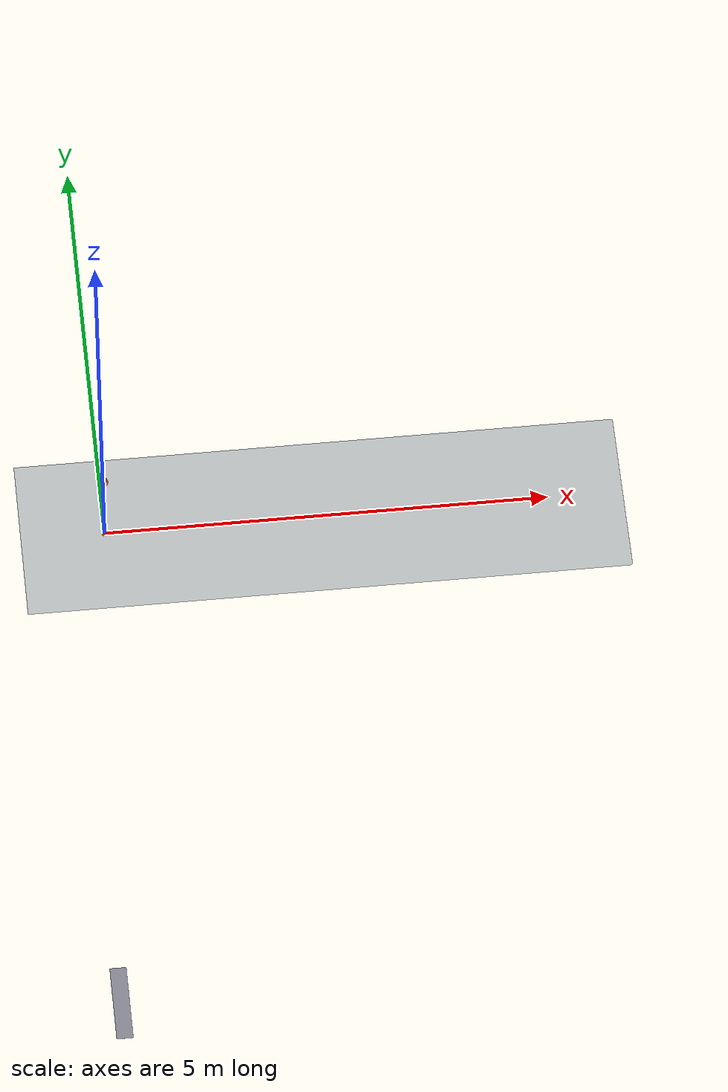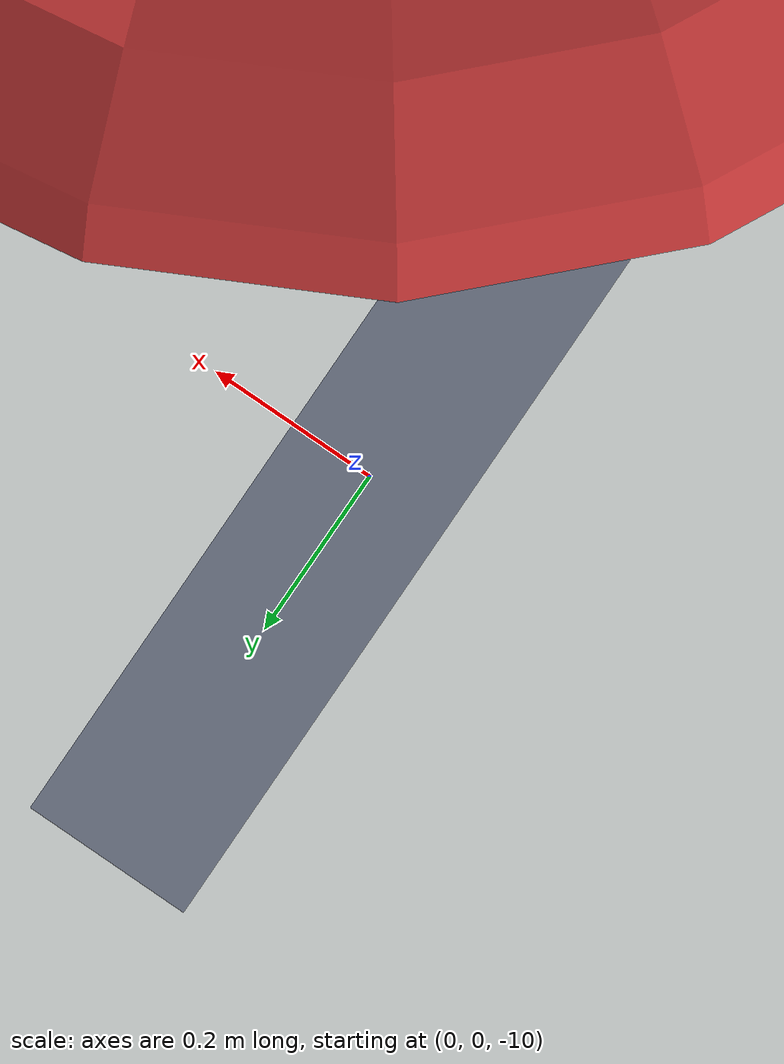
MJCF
<mujoco model="slip_2d">
  <option gravity="0 0 -9.81" timestep="0.001"/>

  <visual>
    <headlight diffuse="0.6 0.6 0.6" ambient="0.4 0.4 0.4" specular="0.2 0.2 0.2"/>
    <rgba haze="0.15 0.25 0.35 1"/>
  </visual>

  <asset>
    <texture type="skybox" builtin="gradient" rgb1="0.3 0.5 0.7" rgb2="0 0 0"
             width="512" height="512"/>
    <texture name="grid" type="2d" builtin="checker" rgb1="0.1 0.2 0.3"
             rgb2="0.2 0.3 0.4" width="300" height="300" mark="edge" markrgb=".2 .3 .4"/>
    <material name="grid" texture="grid" texrepeat="4 4" texuniform="true"
              reflectance="0.2"/>
  </asset>

  <worldbody>
    <geom name="floor" type="plane" pos="0 0 0" size="6 1 0.05" material="grid"/>

    <!-- 质心球 -->
    <body name="hopper" pos="0 0 1">
      <joint name="bx" type="slide" axis="1 0 0" damping="0"/>
      <joint name="bz" type="slide" axis="0 0 1" damping="0"/>
      <geom name="ball" type="sphere" size="0.06" mass="1.0"
            rgba="1.0 0.3 0.3 1"/>
      <site name="top" pos="0 0 -0.06" size="0.02" rgba="0.9 0.7 0.1 1"/>
    </body>

    <!-- 足端 -->
    <body name="foot_body" pos="0 0 0">
      <joint name="fx" type="slide" axis="1 0 0" damping="0" limited="false"/>
      <joint name="fz" type="slide" axis="0 0 1" damping="0" limited="false"/>
      <geom name="foot_geom" type="sphere" size="0.03" mass="0.001"
            rgba="0.9 0.7 0.1 1"/>
      <site name="foot" pos="0 0 0" size="0.025" rgba="0.9 0.7 0.1 1"/>
    </body>

    <!-- 地形 box tile：上限 64，运行时通过 m->geom_pos / geom_size 改写
         切换地形类型时全部 reset 到 z=0（即"藏起来"）后再贴上 polyline 段。 -->
    <body name="terrain_tiles" pos="0 0 0">
      <geom name="t00" type="box" size="0.1 0.5 0.001" pos="0 0 -10" rgba="0.55 0.55 0.60 1" contype="0" conaffinity="0"/>
      <geom name="t01" type="box" size="0.1 0.5 0.001" pos="0 0 -10" rgba="0.55 0.55 0.60 1" contype="0" conaffinity="0"/>
      <geom name="t02" type="box" size="0.1 0.5 0.001" pos="0 0 -10" rgba="0.55 0.55 0.60 1" contype="0" conaffinity="0"/>
      <geom name="t03" type="box" size="0.1 0.5 0.001" pos="0 0 -10" rgba="0.55 0.55 0.60 1" contype="0" conaffinity="0"/>
      <geom name="t04" type="box" size="0.1 0.5 0.001" pos="0 0 -10" rgba="0.55 0.55 0.60 1" contype="0" conaffinity="0"/>
      <geom name="t05" type="box" size="0.1 0.5 0.001" pos="0 0 -10" rgba="0.55 0.55 0.60 1" contype="0" conaffinity="0"/>
      <geom name="t06" type="box" size="0.1 0.5 0.001" pos="0 0 -10" rgba="0.55 0.55 0.60 1" contype="0" conaffinity="0"/>
      <geom name="t07" type="box" size="0.1 0.5 0.001" pos="0 0 -10" rgba="0.55 0.55 0.60 1" contype="0" conaffinity="0"/>
      <geom name="t08" type="box" size="0.1 0.5 0.001" pos="0 0 -10" rgba="0.55 0.55 0.60 1" contype="0" conaffinity="0"/>
      <geom name="t09" type="box" size="0.1 0.5 0.001" pos="0 0 -10" rgba="0.55 0.55 0.60 1" contype="0" conaffinity="0"/>
      <geom name="t10" type="box" size="0.1 0.5 0.001" pos="0 0 -10" rgba="0.55 0.55 0.60 1" contype="0" conaffinity="0"/>
      <geom name="t11" type="box" size="0.1 0.5 0.001" pos="0 0 -10" rgba="0.55 0.55 0.60 1" contype="0" conaffinity="0"/>
      <geom name="t12" type="box" size="0.1 0.5 0.001" pos="0 0 -10" rgba="0.55 0.55 0.60 1" contype="0" conaffinity="0"/>
      <geom name="t13" type="box" size="0.1 0.5 0.001" pos="0 0 -10" rgba="0.55 0.55 0.60 1" contype="0" conaffinity="0"/>
      <geom name="t14" type="box" size="0.1 0.5 0.001" pos="0 0 -10" rgba="0.55 0.55 0.60 1" contype="0" conaffinity="0"/>
      <geom name="t15" type="box" size="0.1 0.5 0.001" pos="0 0 -10" rgba="0.55 0.55 0.60 1" contype="0" conaffinity="0"/>
      <geom name="t16" type="box" size="0.1 0.5 0.001" pos="0 0 -10" rgba="0.55 0.55 0.60 1" contype="0" conaffinity="0"/>
      <geom name="t17" type="box" size="0.1 0.5 0.001" pos="0 0 -10" rgba="0.55 0.55 0.60 1" contype="0" conaffinity="0"/>
      <geom name="t18" type="box" size="0.1 0.5 0.001" pos="0 0 -10" rgba="0.55 0.55 0.60 1" contype="0" conaffinity="0"/>
      <geom name="t19" type="box" size="0.1 0.5 0.001" pos="0 0 -10" rgba="0.55 0.55 0.60 1" contype="0" conaffinity="0"/>
      <geom name="t20" type="box" size="0.1 0.5 0.001" pos="0 0 -10" rgba="0.55 0.55 0.60 1" contype="0" conaffinity="0"/>
      <geom name="t21" type="box" size="0.1 0.5 0.001" pos="0 0 -10" rgba="0.55 0.55 0.60 1" contype="0" conaffinity="0"/>
      <geom name="t22" type="box" size="0.1 0.5 0.001" pos="0 0 -10" rgba="0.55 0.55 0.60 1" contype="0" conaffinity="0"/>
      <geom name="t23" type="box" size="0.1 0.5 0.001" pos="0 0 -10" rgba="0.55 0.55 0.60 1" contype="0" conaffinity="0"/>
      <geom name="t24" type="box" size="0.1 0.5 0.001" pos="0 0 -10" rgba="0.55 0.55 0.60 1" contype="0" conaffinity="0"/>
      <geom name="t25" type="box" size="0.1 0.5 0.001" pos="0 0 -10" rgba="0.55 0.55 0.60 1" contype="0" conaffinity="0"/>
      <geom name="t26" type="box" size="0.1 0.5 0.001" pos="0 0 -10" rgba="0.55 0.55 0.60 1" contype="0" conaffinity="0"/>
      <geom name="t27" type="box" size="0.1 0.5 0.001" pos="0 0 -10" rgba="0.55 0.55 0.60 1" contype="0" conaffinity="0"/>
      <geom name="t28" type="box" size="0.1 0.5 0.001" pos="0 0 -10" rgba="0.55 0.55 0.60 1" contype="0" conaffinity="0"/>
      <geom name="t29" type="box" size="0.1 0.5 0.001" pos="0 0 -10" rgba="0.55 0.55 0.60 1" contype="0" conaffinity="0"/>
      <geom name="t30" type="box" size="0.1 0.5 0.001" pos="0 0 -10" rgba="0.55 0.55 0.60 1" contype="0" conaffinity="0"/>
      <geom name="t31" type="box" size="0.1 0.5 0.001" pos="0 0 -10" rgba="0.55 0.55 0.60 1" contype="0" conaffinity="0"/>
      <geom name="t32" type="box" size="0.1 0.5 0.001" pos="0 0 -10" rgba="0.55 0.55 0.60 1" contype="0" conaffinity="0"/>
      <geom name="t33" type="box" size="0.1 0.5 0.001" pos="0 0 -10" rgba="0.55 0.55 0.60 1" contype="0" conaffinity="0"/>
      <geom name="t34" type="box" size="0.1 0.5 0.001" pos="0 0 -10" rgba="0.55 0.55 0.60 1" contype="0" conaffinity="0"/>
      <geom name="t35" type="box" size="0.1 0.5 0.001" pos="0 0 -10" rgba="0.55 0.55 0.60 1" contype="0" conaffinity="0"/>
      <geom name="t36" type="box" size="0.1 0.5 0.001" pos="0 0 -10" rgba="0.55 0.55 0.60 1" contype="0" conaffinity="0"/>
      <geom name="t37" type="box" size="0.1 0.5 0.001" pos="0 0 -10" rgba="0.55 0.55 0.60 1" contype="0" conaffinity="0"/>
      <geom name="t38" type="box" size="0.1 0.5 0.001" pos="0 0 -10" rgba="0.55 0.55 0.60 1" contype="0" conaffinity="0"/>
      <geom name="t39" type="box" size="0.1 0.5 0.001" pos="0 0 -10" rgba="0.55 0.55 0.60 1" contype="0" conaffinity="0"/>
      <geom name="t40" type="box" size="0.1 0.5 0.001" pos="0 0 -10" rgba="0.55 0.55 0.60 1" contype="0" conaffinity="0"/>
      <geom name="t41" type="box" size="0.1 0.5 0.001" pos="0 0 -10" rgba="0.55 0.55 0.60 1" contype="0" conaffinity="0"/>
      <geom name="t42" type="box" size="0.1 0.5 0.001" pos="0 0 -10" rgba="0.55 0.55 0.60 1" contype="0" conaffinity="0"/>
      <geom name="t43" type="box" size="0.1 0.5 0.001" pos="0 0 -10" rgba="0.55 0.55 0.60 1" contype="0" conaffinity="0"/>
      <geom name="t44" type="box" size="0.1 0.5 0.001" pos="0 0 -10" rgba="0.55 0.55 0.60 1" contype="0" conaffinity="0"/>
      <geom name="t45" type="box" size="0.1 0.5 0.001" pos="0 0 -10" rgba="0.55 0.55 0.60 1" contype="0" conaffinity="0"/>
      <geom name="t46" type="box" size="0.1 0.5 0.001" pos="0 0 -10" rgba="0.55 0.55 0.60 1" contype="0" conaffinity="0"/>
      <geom name="t47" type="box" size="0.1 0.5 0.001" pos="0 0 -10" rgba="0.55 0.55 0.60 1" contype="0" conaffinity="0"/>
      <geom name="t48" type="box" size="0.1 0.5 0.001" pos="0 0 -10" rgba="0.55 0.55 0.60 1" contype="0" conaffinity="0"/>
      <geom name="t49" type="box" size="0.1 0.5 0.001" pos="0 0 -10" rgba="0.55 0.55 0.60 1" contype="0" conaffinity="0"/>
      <geom name="t50" type="box" size="0.1 0.5 0.001" pos="0 0 -10" rgba="0.55 0.55 0.60 1" contype="0" conaffinity="0"/>
      <geom name="t51" type="box" size="0.1 0.5 0.001" pos="0 0 -10" rgba="0.55 0.55 0.60 1" contype="0" conaffinity="0"/>
      <geom name="t52" type="box" size="0.1 0.5 0.001" pos="0 0 -10" rgba="0.55 0.55 0.60 1" contype="0" conaffinity="0"/>
      <geom name="t53" type="box" size="0.1 0.5 0.001" pos="0 0 -10" rgba="0.55 0.55 0.60 1" contype="0" conaffinity="0"/>
      <geom name="t54" type="box" size="0.1 0.5 0.001" pos="0 0 -10" rgba="0.55 0.55 0.60 1" contype="0" conaffinity="0"/>
      <geom name="t55" type="box" size="0.1 0.5 0.001" pos="0 0 -10" rgba="0.55 0.55 0.60 1" contype="0" conaffinity="0"/>
      <geom name="t56" type="box" size="0.1 0.5 0.001" pos="0 0 -10" rgba="0.55 0.55 0.60 1" contype="0" conaffinity="0"/>
      <geom name="t57" type="box" size="0.1 0.5 0.001" pos="0 0 -10" rgba="0.55 0.55 0.60 1" contype="0" conaffinity="0"/>
      <geom name="t58" type="box" size="0.1 0.5 0.001" pos="0 0 -10" rgba="0.55 0.55 0.60 1" contype="0" conaffinity="0"/>
      <geom name="t59" type="box" size="0.1 0.5 0.001" pos="0 0 -10" rgba="0.55 0.55 0.60 1" contype="0" conaffinity="0"/>
      <geom name="t60" type="box" size="0.1 0.5 0.001" pos="0 0 -10" rgba="0.55 0.55 0.60 1" contype="0" conaffinity="0"/>
      <geom name="t61" type="box" size="0.1 0.5 0.001" pos="0 0 -10" rgba="0.55 0.55 0.60 1" contype="0" conaffinity="0"/>
      <geom name="t62" type="box" size="0.1 0.5 0.001" pos="0 0 -10" rgba="0.55 0.55 0.60 1" contype="0" conaffinity="0"/>
      <geom name="t63" type="box" size="0.1 0.5 0.001" pos="0 0 -10" rgba="0.55 0.55 0.60 1" contype="0" conaffinity="0"/>
    </body>
  </worldbody>

  <tendon>
    <spatial name="spring" width="0.025" rgba="0.2 0.7 1.0 1">
      <site site="foot"/>
      <site site="top"/>
    </spatial>
  </tendon>
</mujoco>
